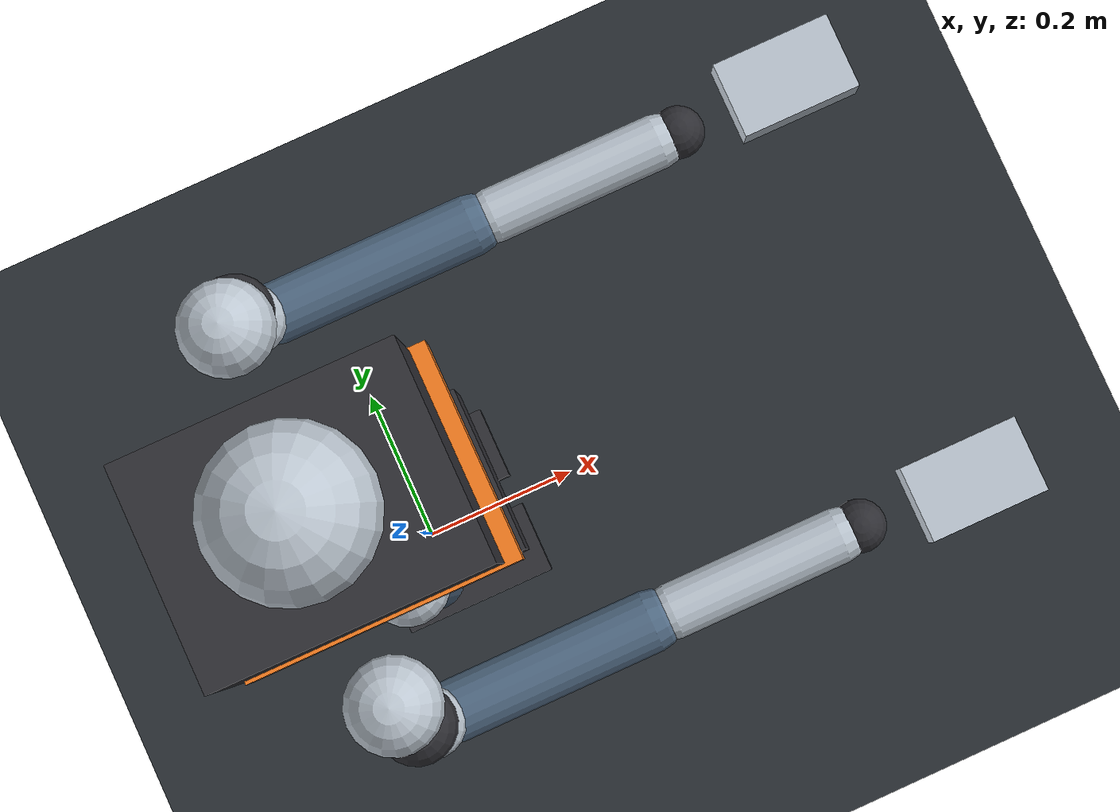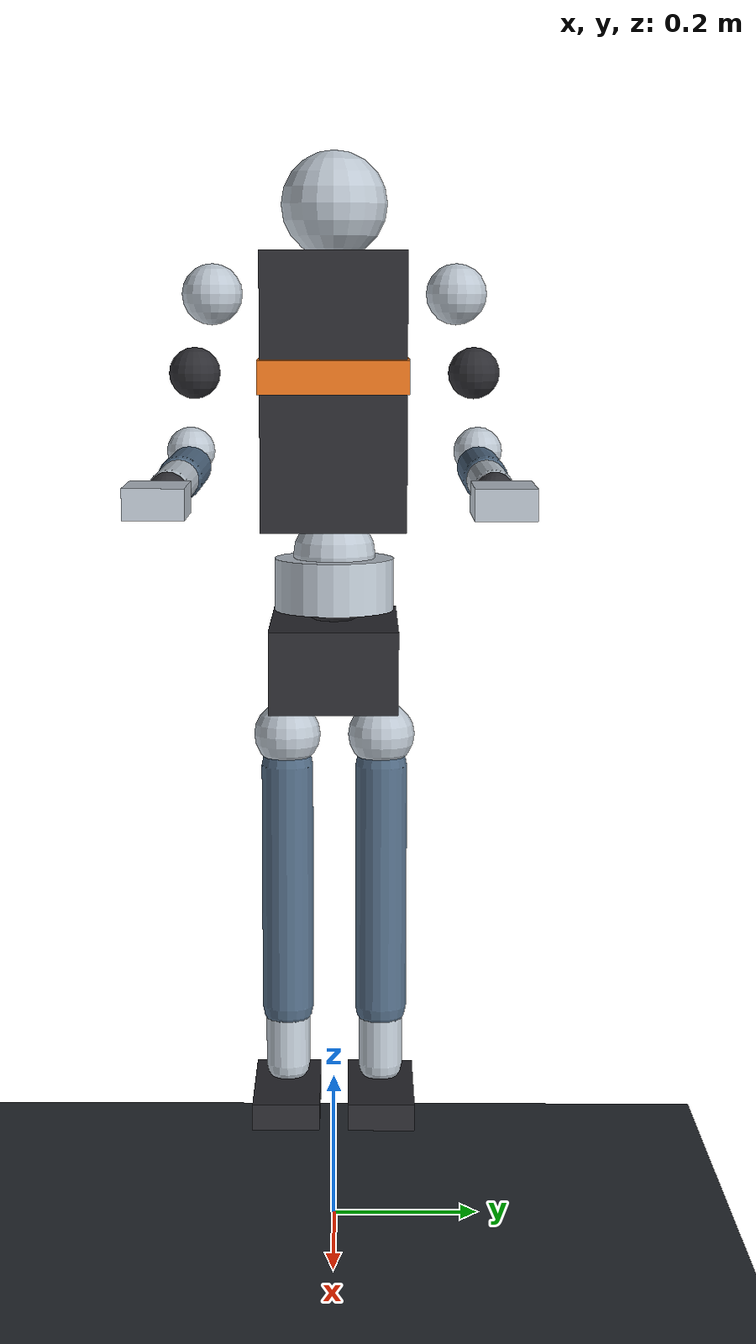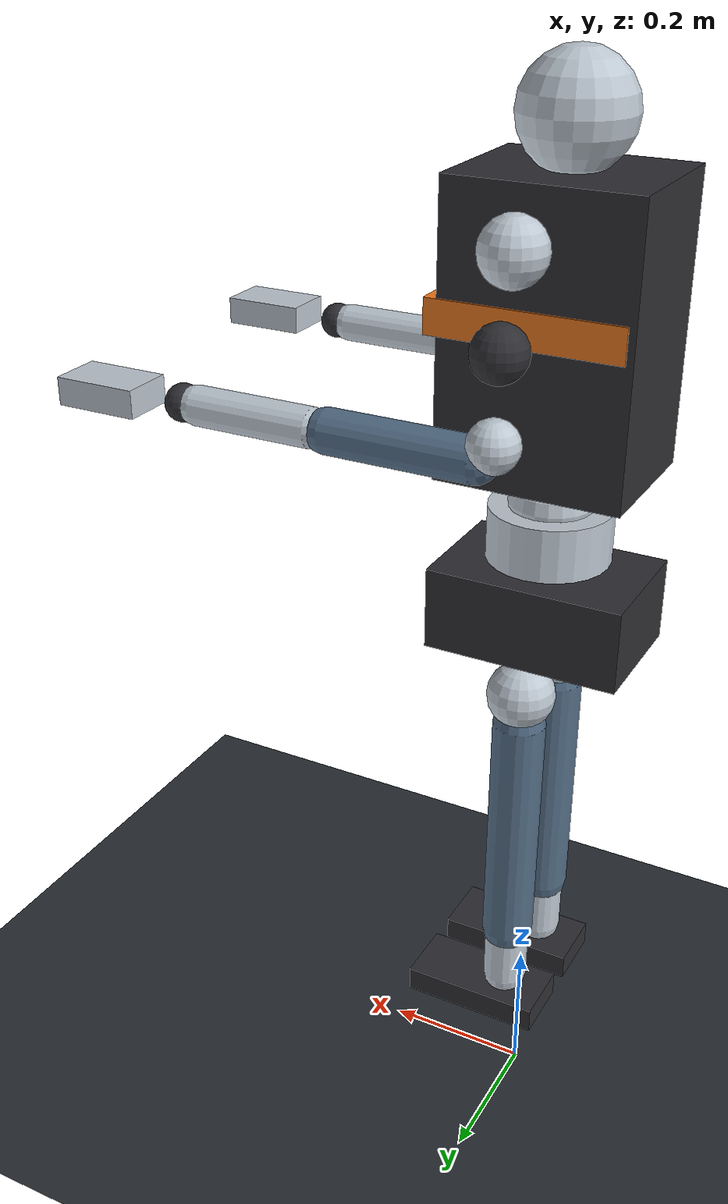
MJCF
<mujoco model="g1_lite_replay">
  <compiler angle="radian" autolimits="true" />
  <option timestep="0.0166667" gravity="0 0 -9.81" integrator="Euler" />

  <visual>
    <headlight ambient="0.6 0.6 0.6" diffuse="0.7 0.7 0.7" specular="0.1 0.1 0.1" />
    <rgba haze="0.15 0.25 0.35 1" />
  </visual>

  <asset>
    <material name="dark" rgba="0.18 0.18 0.2 1" />
    <material name="light" rgba="0.74 0.78 0.82 1" />
    <material name="accent" rgba="0.95 0.48 0.12 1" />
    <material name="limb" rgba="0.32 0.42 0.52 1" />
  </asset>

  <worldbody>
    <geom name="floor" type="plane" size="8 8 0.1" rgba="0.16 0.18 0.2 1" />

    <body name="pelvis_root" pos="0 0 0.79">
      <freejoint name="floating_base_joint" />
      <inertial pos="0 0 0" mass="12" diaginertia="0.25 0.25 0.25" />
      <geom name="pelvis_geom" type="box" size="0.13 0.085 0.055" material="dark" />

      <body name="left_hip_pitch_link" pos="0 0.064 -0.103">
        <joint name="left_hip_pitch_joint" axis="0 1 0" range="-2.6 2.9" />
        <geom type="sphere" size="0.045" material="light" />
        <body name="left_hip_roll_link">
          <joint name="left_hip_roll_joint" axis="1 0 0" range="-0.52 2.97" />
          <geom type="sphere" size="0.035" material="dark" />
          <body name="left_hip_yaw_link">
            <joint name="left_hip_yaw_joint" axis="0 0 1" range="-2.75 2.75" />
            <geom type="sphere" size="0.033" material="light" />
            <body name="left_knee_link" pos="0 0 -0.213">
              <joint name="left_knee_joint" axis="0 1 0" range="-0.09 2.62" />
              <geom type="capsule" fromto="0 0 0.17 0 0 -0.17" size="0.035" material="limb" />
              <body name="left_ankle_pitch_link" pos="0 0 -0.213">
                <joint name="left_ankle_pitch_joint" axis="0 1 0" range="-0.87 0.52" />
                <geom type="capsule" fromto="0 0 0.16 0 0 -0.04" size="0.03" material="light" />
                <body name="left_ankle_roll_link" pos="0 0 -0.05">
                  <joint name="left_ankle_roll_joint" axis="1 0 0" range="-0.26 0.26" />
                  <geom type="box" pos="0.035 0 -0.025" size="0.095 0.045 0.018" material="dark" />
                </body>
              </body>
            </body>
          </body>
        </body>
      </body>

      <body name="right_hip_pitch_link" pos="0 -0.064 -0.103">
        <joint name="right_hip_pitch_joint" axis="0 1 0" range="-2.6 2.9" />
        <geom type="sphere" size="0.045" material="light" />
        <body name="right_hip_roll_link">
          <joint name="right_hip_roll_joint" axis="1 0 0" range="-2.97 0.52" />
          <geom type="sphere" size="0.035" material="dark" />
          <body name="right_hip_yaw_link">
            <joint name="right_hip_yaw_joint" axis="0 0 1" range="-2.75 2.75" />
            <geom type="sphere" size="0.033" material="light" />
            <body name="right_knee_link" pos="0 0 -0.213">
              <joint name="right_knee_joint" axis="0 1 0" range="-0.09 2.62" />
              <geom type="capsule" fromto="0 0 0.17 0 0 -0.17" size="0.035" material="limb" />
              <body name="right_ankle_pitch_link" pos="0 0 -0.213">
                <joint name="right_ankle_pitch_joint" axis="0 1 0" range="-0.87 0.52" />
                <geom type="capsule" fromto="0 0 0.16 0 0 -0.04" size="0.03" material="light" />
                <body name="right_ankle_roll_link" pos="0 0 -0.05">
                  <joint name="right_ankle_roll_joint" axis="1 0 0" range="-0.26 0.26" />
                  <geom type="box" pos="0.035 0 -0.025" size="0.095 0.045 0.018" material="dark" />
                </body>
              </body>
            </body>
          </body>
        </body>
      </body>

      <body name="waist_yaw_link" pos="0 0 0.103">
        <joint name="waist_yaw_joint" axis="0 0 1" range="-2.62 2.62" />
        <geom type="cylinder" size="0.08 0.035" material="light" />
        <body name="waist_roll_link">
          <joint name="waist_roll_joint" axis="1 0 0" range="-0.52 0.52" />
          <geom type="sphere" size="0.055" material="dark" />
          <body name="waist_pitch_link" pos="0 0 0.04">
            <joint name="waist_pitch_joint" axis="0 1 0" range="-0.52 0.52" />
            <geom type="sphere" size="0.055" material="light" />
            <body name="torso_link" pos="0 0 0.14">
              <geom type="box" pos="0 0 0.08" size="0.12 0.095 0.18" material="dark" />
              <geom type="box" pos="0.012 0 0.1" size="0.123 0.098 0.022" material="accent" />
              <body name="head_link" pos="0 0 0.32">
                <geom type="sphere" size="0.07" material="light" />
              </body>

              <body name="left_shoulder_pitch_link" pos="0 0.161 0.204">
                <joint name="left_shoulder_pitch_joint" axis="0 1 0" range="-3.09 2.67" />
                <geom type="sphere" size="0.04" material="light" />
                <body name="left_shoulder_roll_link" pos="0 0.024 -0.103">
                  <joint name="left_shoulder_roll_joint" axis="1 0 0" range="-1.59 2.25" />
                  <geom type="sphere" size="0.034" material="dark" />
                  <body name="left_shoulder_yaw_link" pos="0 0.006 -0.103">
                    <joint name="left_shoulder_yaw_joint" axis="0 0 1" range="-2.62 2.62" />
                    <geom type="sphere" size="0.032" material="light" />
                    <body name="left_elbow_link" pos="0.19 0 -0.02">
                      <joint name="left_elbow_joint" axis="0 1 0" range="-1.05 2.09" />
                      <geom type="capsule" fromto="-0.17 0 0 0.02 0 0" size="0.028" material="limb" />
                      <body name="left_wrist_roll_link" pos="0.18 0 0">
                        <joint name="left_wrist_roll_joint" axis="1 0 0" range="-2.97 2.97" />
                        <geom type="capsule" fromto="-0.14 0 0 0.02 0 0" size="0.025" material="light" />
                        <body name="left_wrist_pitch_link" pos="0.04 0 0">
                          <joint name="left_wrist_pitch_joint" axis="0 1 0" range="-1.61 1.61" />
                          <geom type="sphere" size="0.024" material="dark" />
                          <body name="left_wrist_yaw_link" pos="0.046 0 0">
                            <joint name="left_wrist_yaw_joint" axis="0 0 1" range="-1.61 1.61" />
                            <geom type="box" pos="0.06 0.004 0" size="0.055 0.035 0.018" material="light" />
                          </body>
                        </body>
                      </body>
                    </body>
                  </body>
                </body>
              </body>

              <body name="right_shoulder_pitch_link" pos="0 -0.161 0.204">
                <joint name="right_shoulder_pitch_joint" axis="0 1 0" range="-3.09 2.67" />
                <geom type="sphere" size="0.04" material="light" />
                <body name="right_shoulder_roll_link" pos="0 -0.024 -0.103">
                  <joint name="right_shoulder_roll_joint" axis="1 0 0" range="-2.25 1.59" />
                  <geom type="sphere" size="0.034" material="dark" />
                  <body name="right_shoulder_yaw_link" pos="0 -0.006 -0.103">
                    <joint name="right_shoulder_yaw_joint" axis="0 0 1" range="-2.62 2.62" />
                    <geom type="sphere" size="0.032" material="light" />
                    <body name="right_elbow_link" pos="0.19 0 -0.02">
                      <joint name="right_elbow_joint" axis="0 1 0" range="-1.05 2.09" />
                      <geom type="capsule" fromto="-0.17 0 0 0.02 0 0" size="0.028" material="limb" />
                      <body name="right_wrist_roll_link" pos="0.18 0 0">
                        <joint name="right_wrist_roll_joint" axis="1 0 0" range="-2.97 2.97" />
                        <geom type="capsule" fromto="-0.14 0 0 0.02 0 0" size="0.025" material="light" />
                        <body name="right_wrist_pitch_link" pos="0.04 0 0">
                          <joint name="right_wrist_pitch_joint" axis="0 1 0" range="-1.61 1.61" />
                          <geom type="sphere" size="0.024" material="dark" />
                          <body name="right_wrist_yaw_link" pos="0.046 0 0">
                            <joint name="right_wrist_yaw_joint" axis="0 0 1" range="-1.61 1.61" />
                            <geom type="box" pos="0.06 -0.004 0" size="0.055 0.035 0.018" material="light" />
                          </body>
                        </body>
                      </body>
                    </body>
                  </body>
                </body>
              </body>
            </body>
          </body>
        </body>
      </body>
    </body>
  </worldbody>
</mujoco>
